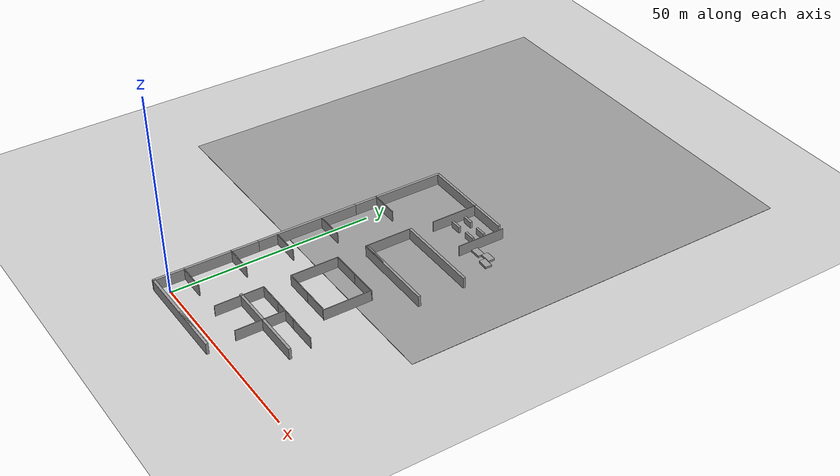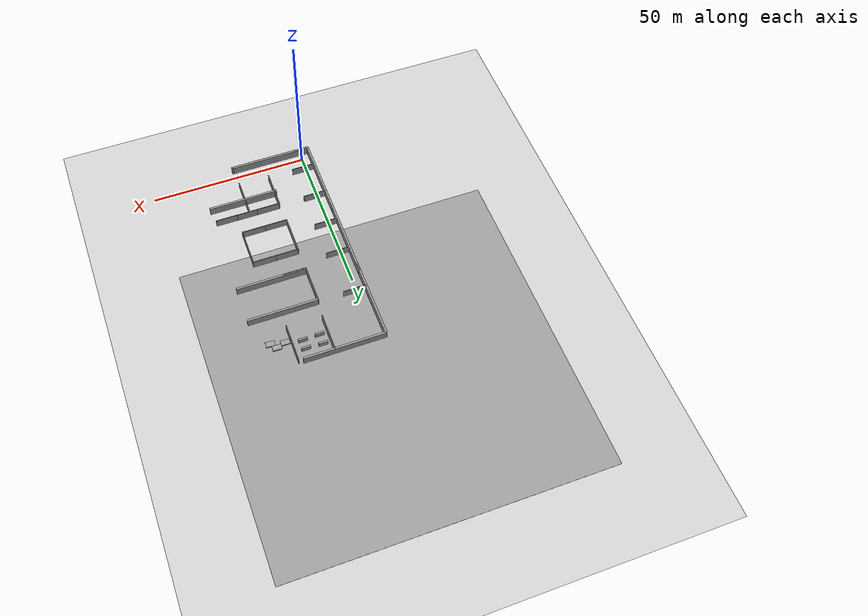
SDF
<sdf version="1.7">
 <world name="default">
  <model name="ground_plane">
   <static>1</static>
   <link name="link">
    <collision name="collision_collision">
     <geometry><plane><normal>0 0 1</normal><size>100 100</size></plane></geometry>
     <surface><friction><ode><mu>100</mu><mu2>50</mu2></ode></friction></surface>
    </collision>
    <visual name="visual">
     <cast_shadows>0</cast_shadows>
     <geometry><plane><normal>0 0 1</normal><size>100 100</size></plane></geometry>
     <material>
      <script><uri>file://media/materials/scripts/gazebo.material</uri><name>Gazebo/Grey</name></script>
     </material>
    </visual>
   </link>
  </model>
  <model name="grey_wall_long">
   <link name="link">
    <pose>0 0 1.37589 0 -0 0</pose>
    <inertial>
     <inertia><ixx>0</ixx><ixy>0</ixy><ixz>0</ixz><iyy>0</iyy><iyz>0</iyz><izz>0</izz></inertia>
     <mass>0</mass>
    </inertial>
    <visual name="visual">
     <cast_shadows>0</cast_shadows>
     <geometry><box><size>25.8815 0.642976 2.8</size></box></geometry>
     <material>
      <script>
       <uri>model://grey_wall/materials/scripts</uri>
       <uri>model://grey_wall/materials/textures</uri>
       <name>vrc/grey_wall</name>
      </script>
      <shader type="pixel"><normal_map>__default__</normal_map></shader>
      <ambient>1 1 1 1</ambient>
      <diffuse>1 1 1 1</diffuse>
      <specular>0 0 0 1</specular>
      <emissive>0 0 0 1</emissive>
     </material>
    </visual>
    <collision name="collision_collision">
     <geometry><box><size>25.8815 0.642976 2.8</size></box></geometry>
     <surface>
      <friction>
       <ode><mu>1</mu><mu2>1</mu2><fdir1>0 0 0</fdir1><slip1>0</slip1><slip2>0</slip2></ode>
       <torsional>
        <coefficient>1</coefficient>
        <patch_radius>0</patch_radius>
        <surface_radius>0</surface_radius>
        <use_patch_radius>1</use_patch_radius>
        <ode><slip>0</slip></ode>
       </torsional>
      </friction>
      <bounce><restitution_coefficient>0</restitution_coefficient><threshold>1e+06</threshold></bounce>
      <contact>
       <collide_without_contact>0</collide_without_contact>
       <collide_without_contact_bitmask>1</collide_without_contact_bitmask>
       <collide_bitmask>1</collide_bitmask>
       <ode>
        <soft_cfm>0</soft_cfm>
        <soft_erp>0.2</soft_erp>
        <kp>1e+13</kp>
        <kd>1</kd>
        <max_vel>0.01</max_vel>
        <min_depth>0</min_depth>
       </ode>
       <bullet>
        <split_impulse>1</split_impulse>
        <split_impulse_penetration_threshold>-0.01</split_impulse_penetration_threshold>
        <soft_cfm>0</soft_cfm>
        <soft_erp>0.2</soft_erp>
        <kp>1e+13</kp>
        <kd>1</kd>
       </bullet>
      </contact>
     </surface>
    </collision>
   </link>
   <static>1</static>
   <pose>10.3524 -2.38269 0 0 -0 0</pose>
  </model>
  <model name="ground_plane_0">
   <static>1</static>
   <link name="link">
    <collision name="collision_collision">
     <geometry><plane><normal>0 0 1</normal><size>100 100</size></plane></geometry>
     <surface><friction><ode><mu>100</mu><mu2>50</mu2></ode></friction></surface>
    </collision>
    <visual name="visual">
     <cast_shadows>0</cast_shadows>
     <geometry><plane><normal>0 0 1</normal><size>100 100</size></plane></geometry>
     <material>
      <script><uri>file://media/materials/scripts/gazebo.material</uri><name>Gazebo/Grey</name></script>
     </material>
    </visual>
   </link>
   <pose>-0.073857 81.0851 0 0 -0 0</pose>
  </model>
  <model name="grew_wall_long_vertial_0_clone">
   <model name="grey_wall_long">
    <link name="link">
     <pose>0 0 1.37589 0 -0 0</pose>
     <inertial>
      <inertia><ixx>0</ixx><ixy>0</ixy><ixz>0</ixz><iyy>0</iyy><iyz>0</iyz><izz>0</izz></inertia>
      <mass>0</mass>
     </inertial>
     <visual name="visual">
      <cast_shadows>0</cast_shadows>
      <geometry><box><size>25.8815 0.642976 2.8</size></box></geometry>
      <material>
       <script>
        <uri>model://grey_wall/materials/scripts</uri>
        <uri>model://grey_wall/materials/textures</uri>
        <name>vrc/grey_wall</name>
       </script>
       <shader type="pixel"><normal_map>__default__</normal_map></shader>
       <ambient>1 1 1 1</ambient>
       <diffuse>1 1 1 1</diffuse>
       <specular>0 0 0 1</specular>
       <emissive>0 0 0 1</emissive>
      </material>
     </visual>
     <collision name="collision_collision">
      <geometry><box><size>25.8815 0.642976 2.8</size></box></geometry>
      <surface>
       <friction>
        <ode><mu>1</mu><mu2>1</mu2><fdir1>0 0 0</fdir1><slip1>0</slip1><slip2>0</slip2></ode>
        <torsional>
         <coefficient>1</coefficient>
         <patch_radius>0</patch_radius>
         <surface_radius>0</surface_radius>
         <use_patch_radius>1</use_patch_radius>
         <ode><slip>0</slip></ode>
        </torsional>
       </friction>
       <bounce><restitution_coefficient>0</restitution_coefficient><threshold>1e+06</threshold></bounce>
       <contact>
        <collide_without_contact>0</collide_without_contact>
        <collide_without_contact_bitmask>1</collide_without_contact_bitmask>
        <collide_bitmask>1</collide_bitmask>
        <ode>
         <soft_cfm>0</soft_cfm>
         <soft_erp>0.2</soft_erp>
         <kp>1e+13</kp>
         <kd>1</kd>
         <max_vel>0.01</max_vel>
         <min_depth>0</min_depth>
        </ode>
        <bullet>
         <split_impulse>1</split_impulse>
         <split_impulse_penetration_threshold>-0.01</split_impulse_penetration_threshold>
         <soft_cfm>0</soft_cfm>
         <soft_erp>0.2</soft_erp>
         <kp>1e+13</kp>
         <kd>1</kd>
        </bullet>
       </contact>
      </surface>
     </collision>
    </link>
    <static>1</static>
    <pose>1e-06 -0 0 0 -0 1.57003</pose>
   </model>
   <static>0</static>
   <pose>-2.80084 59.1647 0 0 -0 0</pose>
  </model>
  <model name="grey_wall_long_term">
   <link name="link">
    <pose>-1.74587 -0.378849 1.37589 0 -0 0</pose>
    <inertial>
     <inertia><ixx>0</ixx><ixy>0</ixy><ixz>0</ixz><iyy>0</iyy><iyz>0</iyz><izz>0</izz></inertia>
     <mass>0</mass>
    </inertial>
    <visual name="visual">
     <cast_shadows>0</cast_shadows>
     <geometry><box><size>22.1596 0.642976 2.8</size></box></geometry>
     <material>
      <script>
       <uri>model://grey_wall/materials/scripts</uri>
       <uri>model://grey_wall/materials/textures</uri>
       <name>vrc/grey_wall</name>
      </script>
      <shader type="pixel"><normal_map>__default__</normal_map></shader>
      <ambient>1 1 1 1</ambient>
      <diffuse>1 1 1 1</diffuse>
      <specular>0 0 0 1</specular>
      <emissive>0 0 0 1</emissive>
     </material>
    </visual>
    <collision name="collision_collision">
     <geometry><box><size>22.1596 0.642976 2.8</size></box></geometry>
     <surface>
      <friction>
       <ode><mu>1</mu><mu2>1</mu2><fdir1>0 0 0</fdir1><slip1>0</slip1><slip2>0</slip2></ode>
       <torsional>
        <coefficient>1</coefficient>
        <patch_radius>0</patch_radius>
        <surface_radius>0</surface_radius>
        <use_patch_radius>1</use_patch_radius>
        <ode><slip>0</slip></ode>
       </torsional>
      </friction>
      <bounce><restitution_coefficient>0</restitution_coefficient><threshold>1e+06</threshold></bounce>
      <contact>
       <collide_without_contact>0</collide_without_contact>
       <collide_without_contact_bitmask>1</collide_without_contact_bitmask>
       <collide_bitmask>1</collide_bitmask>
       <ode>
        <soft_cfm>0</soft_cfm>
        <soft_erp>0.2</soft_erp>
        <kp>1e+13</kp>
        <kd>1</kd>
        <max_vel>0.01</max_vel>
        <min_depth>0</min_depth>
       </ode>
       <bullet>
        <split_impulse>1</split_impulse>
        <split_impulse_penetration_threshold>-0.01</split_impulse_penetration_threshold>
        <soft_cfm>0</soft_cfm>
        <soft_erp>0.2</soft_erp>
        <kp>1e+13</kp>
        <kd>1</kd>
       </bullet>
      </contact>
     </surface>
    </collision>
   </link>
   <static>1</static>
   <pose>25.4016 54.6879 0 0 -0 0</pose>
  </model>
  <model name="grey_wall_12m_vertial_2_clone_clone_0">
   <link name="link">
    <pose>0.289112 -0.003891 1.4 0 0 -1.5701</pose>
    <inertial>
     <inertia><ixx>0</ixx><ixy>0</ixy><ixz>0</ixz><iyy>0</iyy><iyz>0</iyz><izz>0</izz></inertia>
     <mass>0</mass>
    </inertial>
    <visual name="visual">
     <cast_shadows>0</cast_shadows>
     <geometry><box><size>12.0527 0.2 2.8</size></box></geometry>
     <material>
      <script>
       <uri>model://grey_wall/materials/scripts</uri>
       <uri>model://grey_wall/materials/textures</uri>
       <name>vrc/grey_wall</name>
      </script>
      <shader type="pixel"/>
      <ambient>1 1 1 1</ambient>
      <diffuse>1 1 1 1</diffuse>
      <specular>0 0 0 1</specular>
      <emissive>0 0 0 1</emissive>
     </material>
    </visual>
    <collision name="collision_collision">
     <geometry><box><size>12.0527 0.2 2.8</size></box></geometry>
     <surface>
      <friction>
       <ode><mu>1</mu><mu2>1</mu2><fdir1>0 0 0</fdir1><slip1>0</slip1><slip2>0</slip2></ode>
       <torsional>
        <coefficient>1</coefficient>
        <patch_radius>0</patch_radius>
        <surface_radius>0</surface_radius>
        <use_patch_radius>1</use_patch_radius>
        <ode><slip>0</slip></ode>
       </torsional>
      </friction>
      <bounce><restitution_coefficient>0</restitution_coefficient><threshold>1e+06</threshold></bounce>
      <contact>
       <collide_without_contact>0</collide_without_contact>
       <collide_without_contact_bitmask>1</collide_without_contact_bitmask>
       <collide_bitmask>1</collide_bitmask>
       <ode>
        <soft_cfm>0</soft_cfm>
        <soft_erp>0.2</soft_erp>
        <kp>1e+13</kp>
        <kd>1</kd>
        <max_vel>0.01</max_vel>
        <min_depth>0</min_depth>
       </ode>
       <bullet>
        <split_impulse>1</split_impulse>
        <split_impulse_penetration_threshold>-0.01</split_impulse_penetration_threshold>
        <soft_cfm>0</soft_cfm>
        <soft_erp>0.2</soft_erp>
        <kp>1e+13</kp>
        <kd>1</kd>
       </bullet>
      </contact>
     </surface>
    </collision>
   </link>
   <static>1</static>
   <pose>12.5451 10.5106 0 0 -0 0</pose>
  </model>
  <model name="grey_wall_12m_vertial_2_clone_clone_1">
   <link name="link">
    <pose>0.289112 -0.003891 1.4 0 0 -1.5701</pose>
    <inertial>
     <inertia><ixx>0</ixx><ixy>0</ixy><ixz>0</ixz><iyy>0</iyy><iyz>0</iyz><izz>0</izz></inertia>
     <mass>0</mass>
    </inertial>
    <visual name="visual">
     <cast_shadows>0</cast_shadows>
     <geometry><box><size>12.0527 0.2 2.8</size></box></geometry>
     <material>
      <script>
       <uri>model://grey_wall/materials/scripts</uri>
       <uri>model://grey_wall/materials/textures</uri>
       <name>vrc/grey_wall</name>
      </script>
      <shader type="pixel"/>
      <ambient>1 1 1 1</ambient>
      <diffuse>1 1 1 1</diffuse>
      <specular>0 0 0 1</specular>
      <emissive>0 0 0 1</emissive>
     </material>
    </visual>
    <collision name="collision_collision">
     <geometry><box><size>12.0527 0.2 2.8</size></box></geometry>
     <surface>
      <friction>
       <ode><mu>1</mu><mu2>1</mu2><fdir1>0 0 0</fdir1><slip1>0</slip1><slip2>0</slip2></ode>
       <torsional>
        <coefficient>1</coefficient>
        <patch_radius>0</patch_radius>
        <surface_radius>0</surface_radius>
        <use_patch_radius>1</use_patch_radius>
        <ode><slip>0</slip></ode>
       </torsional>
      </friction>
      <bounce><restitution_coefficient>0</restitution_coefficient><threshold>1e+06</threshold></bounce>
      <contact>
       <collide_without_contact>0</collide_without_contact>
       <collide_without_contact_bitmask>1</collide_without_contact_bitmask>
       <collide_bitmask>1</collide_bitmask>
       <ode>
        <soft_cfm>0</soft_cfm>
        <soft_erp>0.2</soft_erp>
        <kp>1e+13</kp>
        <kd>1</kd>
        <max_vel>0.01</max_vel>
        <min_depth>0</min_depth>
       </ode>
       <bullet>
        <split_impulse>1</split_impulse>
        <split_impulse_penetration_threshold>-0.01</split_impulse_penetration_threshold>
        <soft_cfm>0</soft_cfm>
        <soft_erp>0.2</soft_erp>
        <kp>1e+13</kp>
        <kd>1</kd>
       </bullet>
      </contact>
     </surface>
    </collision>
   </link>
   <static>1</static>
   <pose>12.22 48.5915 0 0 -0 0</pose>
  </model>
  <model name="grey_wall_12m_vertial_2_clone_clone_2">
   <link name="link">
    <pose>0.289112 -0.003891 1.4 0 0 -1.5701</pose>
    <inertial>
     <inertia><ixx>0</ixx><ixy>0</ixy><ixz>0</ixz><iyy>0</iyy><iyz>0</iyz><izz>0</izz></inertia>
     <mass>0</mass>
    </inertial>
    <visual name="visual">
     <cast_shadows>0</cast_shadows>
     <geometry><box><size>12.0527 0.2 2.8</size></box></geometry>
     <material>
      <script>
       <uri>model://grey_wall/materials/scripts</uri>
       <uri>model://grey_wall/materials/textures</uri>
       <name>vrc/grey_wall</name>
      </script>
      <shader type="pixel"/>
      <ambient>1 1 1 1</ambient>
      <diffuse>1 1 1 1</diffuse>
      <specular>0 0 0 1</specular>
      <emissive>0 0 0 1</emissive>
     </material>
    </visual>
    <collision name="collision_collision">
     <geometry><box><size>12.0527 0.2 2.8</size></box></geometry>
     <surface>
      <friction>
       <ode><mu>1</mu><mu2>1</mu2><fdir1>0 0 0</fdir1><slip1>0</slip1><slip2>0</slip2></ode>
       <torsional>
        <coefficient>1</coefficient>
        <patch_radius>0</patch_radius>
        <surface_radius>0</surface_radius>
        <use_patch_radius>1</use_patch_radius>
        <ode><slip>0</slip></ode>
       </torsional>
      </friction>
      <bounce><restitution_coefficient>0</restitution_coefficient><threshold>1e+06</threshold></bounce>
      <contact>
       <collide_without_contact>0</collide_without_contact>
       <collide_without_contact_bitmask>1</collide_without_contact_bitmask>
       <collide_bitmask>1</collide_bitmask>
       <ode>
        <soft_cfm>0</soft_cfm>
        <soft_erp>0.2</soft_erp>
        <kp>1e+13</kp>
        <kd>1</kd>
        <max_vel>0.01</max_vel>
        <min_depth>0</min_depth>
       </ode>
       <bullet>
        <split_impulse>1</split_impulse>
        <split_impulse_penetration_threshold>-0.01</split_impulse_penetration_threshold>
        <soft_cfm>0</soft_cfm>
        <soft_erp>0.2</soft_erp>
        <kp>1e+13</kp>
        <kd>1</kd>
       </bullet>
      </contact>
     </surface>
    </collision>
   </link>
   <static>1</static>
   <pose>12.3021 29.2356 0 0 -0 0</pose>
  </model>
  <model name="grey_wall_0_clone_clone_clone">
   <static>1</static>
   <link name="link">
    <pose>0 0 1.4 0 -0 0</pose>
    <collision name="collision_collision"><geometry><box><size>7.5 0.2 2.8</size></box></geometry></collision>
    <visual name="visual">
     <cast_shadows>0</cast_shadows>
     <geometry><box><size>7.5 0.2 2.8</size></box></geometry>
     <material>
      <script>
       <uri>model://grey_wall/materials/scripts</uri>
       <uri>model://grey_wall/materials/textures</uri>
       <name>vrc/grey_wall</name>
      </script>
     </material>
    </visual>
   </link>
   <pose>0.965248 4.85897 0 0 -0 0</pose>
  </model>
  <model name="grey_wall_0_clone_clone_clone_3">
   <static>1</static>
   <link name="link">
    <pose>0 0 1.4 0 -0 0</pose>
    <collision name="collision_collision"><geometry><box><size>7.5 0.2 2.8</size></box></geometry></collision>
    <visual name="visual">
     <cast_shadows>0</cast_shadows>
     <geometry><box><size>7.5 0.2 2.8</size></box></geometry>
     <material>
      <script>
       <uri>model://grey_wall/materials/scripts</uri>
       <uri>model://grey_wall/materials/textures</uri>
       <name>vrc/grey_wall</name>
      </script>
     </material>
    </visual>
   </link>
   <pose>16.1538 42.549 0 0 -0 0</pose>
  </model>
  <model name="grey_wall_0_clone_clone_clone_4">
   <static>1</static>
   <link name="link">
    <pose>0 0 1.4 0 -0 0</pose>
    <collision name="collision_collision"><geometry><box><size>7.5 0.2 2.8</size></box></geometry></collision>
    <visual name="visual">
     <cast_shadows>0</cast_shadows>
     <geometry><box><size>7.5 0.2 2.8</size></box></geometry>
     <material>
      <script>
       <uri>model://grey_wall/materials/scripts</uri>
       <uri>model://grey_wall/materials/textures</uri>
       <name>vrc/grey_wall</name>
      </script>
     </material>
    </visual>
   </link>
   <pose>16.2541 35.1402 0 0 -0 0</pose>
  </model>
  <model name="grey_wall_0_clone_clone_clone_4_clone">
   <static>1</static>
   <link name="link">
    <pose>0 0 1.4 0 -0 0</pose>
    <collision name="collision_collision"><geometry><box><size>7.5 0.2 2.8</size></box></geometry></collision>
    <visual name="visual">
     <cast_shadows>0</cast_shadows>
     <geometry><box><size>7.5 0.2 2.8</size></box></geometry>
     <material>
      <script>
       <uri>model://grey_wall/materials/scripts</uri>
       <uri>model://grey_wall/materials/textures</uri>
       <name>vrc/grey_wall</name>
      </script>
     </material>
    </visual>
   </link>
   <pose>16.5015 16.4177 0 0 -0 0</pose>
  </model>
  <model name="grey_wall_0_clone_clone_clone_4_clone_0">
   <static>1</static>
   <link name="link">
    <pose>0 0 1.4 0 -0 0</pose>
    <collision name="collision_collision"><geometry><box><size>7.5 0.2 2.8</size></box></geometry></collision>
    <visual name="visual">
     <cast_shadows>0</cast_shadows>
     <geometry><box><size>7.5 0.2 2.8</size></box></geometry>
     <material>
      <script>
       <uri>model://grey_wall/materials/scripts</uri>
       <uri>model://grey_wall/materials/textures</uri>
       <name>vrc/grey_wall</name>
      </script>
     </material>
    </visual>
   </link>
   <pose>16.2401 23.3036 0 0 -0 0</pose>
  </model>
  <model name="grey_wall_0_clone_clone_clone_2_clone_0_clone_1_clone_0_clone">
   <static>1</static>
   <link name="link">
    <pose>0 0 1.4 0 -0 0</pose>
    <collision name="collision_collision"><geometry><box><size>7.5 0.2 2.8</size></box></geometry></collision>
    <visual name="visual">
     <cast_shadows>0</cast_shadows>
     <geometry><box><size>7.5 0.2 2.8</size></box></geometry>
     <material>
      <script>
       <uri>model://grey_wall/materials/scripts</uri>
       <uri>model://grey_wall/materials/textures</uri>
       <name>vrc/grey_wall</name>
      </script>
     </material>
    </visual>
   </link>
   <pose>0.752865 54.4466 0 0 -0 0</pose>
  </model>
  <model name="unit_box_clone_clone_0">
   <pose>15.6743 64.8519 0.834396 -0 -3.2e-05 0.012884</pose>
   <link name="link">
    <inertial>
     <mass>1</mass>
     <inertia>
      <ixx>0.166667</ixx>
      <ixy>0</ixy>
      <ixz>0</ixz>
      <iyy>0.166667</iyy>
      <iyz>0</iyz>
      <izz>0.166667</izz>
     </inertia>
    </inertial>
    <collision name="collision_collision">
     <geometry><box><size>2.81196 0.562598 1.66888</size></box></geometry>
    </collision>
    <visual name="visual">
     <geometry><box><size>2.81196 0.562598 1.66888</size></box></geometry>
     <material>
      <script><name>Gazebo/Grey</name><uri>file://media/materials/scripts/gazebo.material</uri></script>
     </material>
    </visual>
   </link>
  </model>
  <model name="unit_box_clone_clone_1">
   <pose>15.5719 68.1637 0.834396 -0 3.2e-05 -0.012728</pose>
   <link name="link">
    <inertial>
     <mass>1</mass>
     <inertia>
      <ixx>0.166667</ixx>
      <ixy>0</ixy>
      <ixz>0</ixz>
      <iyy>0.166667</iyy>
      <iyz>0</iyz>
      <izz>0.166667</izz>
     </inertia>
    </inertial>
    <collision name="collision_collision">
     <geometry><box><size>2.81196 0.562598 1.66888</size></box></geometry>
    </collision>
    <visual name="visual">
     <geometry><box><size>2.81196 0.562598 1.66888</size></box></geometry>
     <material>
      <script><name>Gazebo/Grey</name><uri>file://media/materials/scripts/gazebo.material</uri></script>
     </material>
    </visual>
   </link>
  </model>
  <model name="unit_box_clone_clone_2">
   <pose>20.8998 65.016 0.834396 0 3.2e-05 0.013</pose>
   <link name="link">
    <inertial>
     <mass>1</mass>
     <inertia>
      <ixx>0.166667</ixx>
      <ixy>0</ixy>
      <ixz>0</ixz>
      <iyy>0.166667</iyy>
      <iyz>0</iyz>
      <izz>0.166667</izz>
     </inertia>
    </inertial>
    <collision name="collision_collision">
     <geometry><box><size>2.81196 0.562598 1.66888</size></box></geometry>
    </collision>
    <visual name="visual">
     <geometry><box><size>2.81196 0.562598 1.66888</size></box></geometry>
     <material>
      <script><name>Gazebo/Grey</name><uri>file://media/materials/scripts/gazebo.material</uri></script>
     </material>
    </visual>
   </link>
  </model>
  <model name="unit_box_clone_clone_3">
   <pose>20.8594 67.9808 0.834396 0 3.2e-05 0.012869</pose>
   <link name="link">
    <inertial>
     <mass>1</mass>
     <inertia>
      <ixx>0.166667</ixx>
      <ixy>0</ixy>
      <ixz>0</ixz>
      <iyy>0.166667</iyy>
      <iyz>0</iyz>
      <izz>0.166667</izz>
     </inertia>
    </inertial>
    <collision name="collision_collision">
     <geometry><box><size>2.81196 0.562598 1.66888</size></box></geometry>
    </collision>
    <visual name="visual">
     <geometry><box><size>2.81196 0.562598 1.66888</size></box></geometry>
     <material>
      <script><name>Gazebo/Grey</name><uri>file://media/materials/scripts/gazebo.material</uri></script>
     </material>
    </visual>
   </link>
  </model>
  <model name="unit_box_clone_clone_5">
   <pose>30.3622 62.906 0.281287 1.57078 -0 -0.053418</pose>
   <link name="link">
    <inertial>
     <mass>1</mass>
     <inertia>
      <ixx>0.166667</ixx>
      <ixy>0</ixy>
      <ixz>0</ixz>
      <iyy>0.166667</iyy>
      <iyz>0</iyz>
      <izz>0.166667</izz>
     </inertia>
    </inertial>
    <collision name="collision_collision">
     <geometry><box><size>2.81196 0.562598 1.66888</size></box></geometry>
    </collision>
    <visual name="visual">
     <geometry><box><size>2.81196 0.562598 1.66888</size></box></geometry>
     <material>
      <script><name>Gazebo/Grey</name><uri>file://media/materials/scripts/gazebo.material</uri></script>
     </material>
    </visual>
   </link>
  </model>
  <model name="unit_box_clone_clone_6">
   <pose>28.819 64.6945 0.281103 -1.5708 -0.00014 0.000555</pose>
   <link name="link">
    <inertial>
     <mass>1</mass>
     <inertia>
      <ixx>0.166667</ixx>
      <ixy>0</ixy>
      <ixz>0</ixz>
      <iyy>0.166667</iyy>
      <iyz>0</iyz>
      <izz>0.166667</izz>
     </inertia>
    </inertial>
    <collision name="collision_collision">
     <geometry><box><size>2.81196 0.562598 1.66888</size></box></geometry>
    </collision>
    <visual name="visual">
     <geometry><box><size>2.81196 0.562598 1.66888</size></box></geometry>
     <material>
      <script><name>Gazebo/Grey</name><uri>file://media/materials/scripts/gazebo.material</uri></script>
     </material>
    </visual>
   </link>
  </model>
  <model name="grey_wall_long_2_clone_1">
   <link name="link">
    <pose>0 0 1.37589 0 -0 0</pose>
    <inertial>
     <inertia><ixx>0</ixx><ixy>0</ixy><ixz>0</ixz><iyy>0</iyy><iyz>0</iyz><izz>0</izz></inertia>
     <mass>0</mass>
    </inertial>
    <visual name="visual">
     <cast_shadows>0</cast_shadows>
     <geometry><box><size>25.8815 0.642976 2.8</size></box></geometry>
     <material>
      <script>
       <uri>model://grey_wall/materials/scripts</uri>
       <uri>model://grey_wall/materials/textures</uri>
       <name>vrc/grey_wall</name>
      </script>
      <shader type="pixel"><normal_map>__default__</normal_map></shader>
      <ambient>1 1 1 1</ambient>
      <diffuse>1 1 1 1</diffuse>
      <specular>0 0 0 1</specular>
      <emissive>0 0 0 1</emissive>
     </material>
    </visual>
    <collision name="collision_collision">
     <geometry><box><size>25.8815 0.642976 2.8</size></box></geometry>
     <surface>
      <friction>
       <ode><mu>1</mu><mu2>1</mu2><fdir1>0 0 0</fdir1><slip1>0</slip1><slip2>0</slip2></ode>
       <torsional>
        <coefficient>1</coefficient>
        <patch_radius>0</patch_radius>
        <surface_radius>0</surface_radius>
        <use_patch_radius>1</use_patch_radius>
        <ode><slip>0</slip></ode>
       </torsional>
      </friction>
      <bounce><restitution_coefficient>0</restitution_coefficient><threshold>1e+06</threshold></bounce>
      <contact>
       <collide_without_contact>0</collide_without_contact>
       <collide_without_contact_bitmask>1</collide_without_contact_bitmask>
       <collide_bitmask>1</collide_bitmask>
       <ode>
        <soft_cfm>0</soft_cfm>
        <soft_erp>0.2</soft_erp>
        <kp>1e+13</kp>
        <kd>1</kd>
        <max_vel>0.01</max_vel>
        <min_depth>0</min_depth>
       </ode>
       <bullet>
        <split_impulse>1</split_impulse>
        <split_impulse_penetration_threshold>-0.01</split_impulse_penetration_threshold>
        <soft_cfm>0</soft_cfm>
        <soft_erp>0.2</soft_erp>
        <kp>1e+13</kp>
        <kd>1</kd>
       </bullet>
      </contact>
     </surface>
    </collision>
   </link>
   <static>1</static>
   <pose>9.99482 71.8312 0 0 -0 0</pose>
  </model>
  <model name="grew_wall_long_vertial_clone">
   <model name="grey_wall_long">
    <link name="link">
     <pose>0 0 1.37589 0 -0 0</pose>
     <inertial>
      <inertia><ixx>0</ixx><ixy>0</ixy><ixz>0</ixz><iyy>0</iyy><iyz>0</iyz><izz>0</izz></inertia>
      <mass>0</mass>
     </inertial>
     <visual name="visual">
      <cast_shadows>0</cast_shadows>
      <geometry><box><size>25.8815 0.642976 2.8</size></box></geometry>
      <material>
       <script>
        <uri>model://grey_wall/materials/scripts</uri>
        <uri>model://grey_wall/materials/textures</uri>
        <name>vrc/grey_wall</name>
       </script>
       <shader type="pixel"><normal_map>__default__</normal_map></shader>
       <ambient>1 1 1 1</ambient>
       <diffuse>1 1 1 1</diffuse>
       <specular>0 0 0 1</specular>
       <emissive>0 0 0 1</emissive>
      </material>
     </visual>
     <collision name="collision_collision">
      <geometry><box><size>25.8815 0.642976 2.8</size></box></geometry>
      <surface>
       <friction>
        <ode><mu>1</mu><mu2>1</mu2><fdir1>0 0 0</fdir1><slip1>0</slip1><slip2>0</slip2></ode>
        <torsional>
         <coefficient>1</coefficient>
         <patch_radius>0</patch_radius>
         <surface_radius>0</surface_radius>
         <use_patch_radius>1</use_patch_radius>
         <ode><slip>0</slip></ode>
        </torsional>
       </friction>
       <bounce><restitution_coefficient>0</restitution_coefficient><threshold>1e+06</threshold></bounce>
       <contact>
        <collide_without_contact>0</collide_without_contact>
        <collide_without_contact_bitmask>1</collide_without_contact_bitmask>
        <collide_bitmask>1</collide_bitmask>
        <ode>
         <soft_cfm>0</soft_cfm>
         <soft_erp>0.2</soft_erp>
         <kp>1e+13</kp>
         <kd>1</kd>
         <max_vel>0.01</max_vel>
         <min_depth>0</min_depth>
        </ode>
        <bullet>
         <split_impulse>1</split_impulse>
         <split_impulse_penetration_threshold>-0.01</split_impulse_penetration_threshold>
         <soft_cfm>0</soft_cfm>
         <soft_erp>0.2</soft_erp>
         <kp>1e+13</kp>
         <kd>1</kd>
        </bullet>
       </contact>
      </surface>
     </collision>
    </link>
    <static>1</static>
    <pose>1e-06 -0 0 0 -0 1.57003</pose>
   </model>
   <static>0</static>
   <pose>-2.80196 35.7564 0 0 -0 0</pose>
  </model>
  <model name="grew_wall_long_vertial_clone_0">
   <model name="grey_wall_long">
    <link name="link">
     <pose>0 0 1.37589 0 -0 0</pose>
     <inertial>
      <inertia><ixx>0</ixx><ixy>0</ixy><ixz>0</ixz><iyy>0</iyy><iyz>0</iyz><izz>0</izz></inertia>
      <mass>0</mass>
     </inertial>
     <visual name="visual">
      <cast_shadows>0</cast_shadows>
      <geometry><box><size>25.8815 0.642976 2.8</size></box></geometry>
      <material>
       <script>
        <uri>model://grey_wall/materials/scripts</uri>
        <uri>model://grey_wall/materials/textures</uri>
        <name>vrc/grey_wall</name>
       </script>
       <shader type="pixel"><normal_map>__default__</normal_map></shader>
       <ambient>1 1 1 1</ambient>
       <diffuse>1 1 1 1</diffuse>
       <specular>0 0 0 1</specular>
       <emissive>0 0 0 1</emissive>
      </material>
     </visual>
     <collision name="collision_collision">
      <geometry><box><size>25.8815 0.642976 2.8</size></box></geometry>
      <surface>
       <friction>
        <ode><mu>1</mu><mu2>1</mu2><fdir1>0 0 0</fdir1><slip1>0</slip1><slip2>0</slip2></ode>
        <torsional>
         <coefficient>1</coefficient>
         <patch_radius>0</patch_radius>
         <surface_radius>0</surface_radius>
         <use_patch_radius>1</use_patch_radius>
         <ode><slip>0</slip></ode>
        </torsional>
       </friction>
       <bounce><restitution_coefficient>0</restitution_coefficient><threshold>1e+06</threshold></bounce>
       <contact>
        <collide_without_contact>0</collide_without_contact>
        <collide_without_contact_bitmask>1</collide_without_contact_bitmask>
        <collide_bitmask>1</collide_bitmask>
        <ode>
         <soft_cfm>0</soft_cfm>
         <soft_erp>0.2</soft_erp>
         <kp>1e+13</kp>
         <kd>1</kd>
         <max_vel>0.01</max_vel>
         <min_depth>0</min_depth>
        </ode>
        <bullet>
         <split_impulse>1</split_impulse>
         <split_impulse_penetration_threshold>-0.01</split_impulse_penetration_threshold>
         <soft_cfm>0</soft_cfm>
         <soft_erp>0.2</soft_erp>
         <kp>1e+13</kp>
         <kd>1</kd>
        </bullet>
       </contact>
      </surface>
     </collision>
    </link>
    <static>1</static>
    <pose>1e-06 -0 0 0 -0 1.57003</pose>
   </model>
   <static>0</static>
   <pose>-2.80688 10.3096 0 0 -0 0</pose>
  </model>
  <model name="grey_wall_long_clone">
   <link name="link">
    <pose>0 0 1.37589 0 -0 0</pose>
    <inertial>
     <inertia><ixx>0</ixx><ixy>0</ixy><ixz>0</ixz><iyy>0</iyy><iyz>0</iyz><izz>0</izz></inertia>
     <mass>0</mass>
    </inertial>
    <visual name="visual">
     <cast_shadows>0</cast_shadows>
     <geometry><box><size>25.8815 0.642976 2.8</size></box></geometry>
     <material>
      <script>
       <uri>model://grey_wall/materials/scripts</uri>
       <uri>model://grey_wall/materials/textures</uri>
       <name>vrc/grey_wall</name>
      </script>
      <shader type="pixel"><normal_map>__default__</normal_map></shader>
      <ambient>1 1 1 1</ambient>
      <diffuse>1 1 1 1</diffuse>
      <specular>0 0 0 1</specular>
      <emissive>0 0 0 1</emissive>
     </material>
    </visual>
    <collision name="collision_collision">
     <geometry><box><size>25.8815 0.642976 2.8</size></box></geometry>
     <surface>
      <friction>
       <ode><mu>1</mu><mu2>1</mu2><fdir1>0 0 0</fdir1><slip1>0</slip1><slip2>0</slip2></ode>
       <torsional>
        <coefficient>1</coefficient>
        <patch_radius>0</patch_radius>
        <surface_radius>0</surface_radius>
        <use_patch_radius>1</use_patch_radius>
        <ode><slip>0</slip></ode>
       </torsional>
      </friction>
      <bounce><restitution_coefficient>0</restitution_coefficient><threshold>1e+06</threshold></bounce>
      <contact>
       <collide_without_contact>0</collide_without_contact>
       <collide_without_contact_bitmask>1</collide_without_contact_bitmask>
       <collide_bitmask>1</collide_bitmask>
       <ode>
        <soft_cfm>0</soft_cfm>
        <soft_erp>0.2</soft_erp>
        <kp>1e+13</kp>
        <kd>1</kd>
        <max_vel>0.01</max_vel>
        <min_depth>0</min_depth>
       </ode>
       <bullet>
        <split_impulse>1</split_impulse>
        <split_impulse_penetration_threshold>-0.01</split_impulse_penetration_threshold>
        <soft_cfm>0</soft_cfm>
        <soft_erp>0.2</soft_erp>
        <kp>1e+13</kp>
        <kd>1</kd>
       </bullet>
      </contact>
     </surface>
    </collision>
   </link>
   <static>1</static>
   <pose>9.80066 -2.33568 0 0 -0 0</pose>
  </model>
  <model name="grey_wall_0_clone_clone_clone_5_clone_0_clone">
   <static>1</static>
   <link name="link">
    <pose>0 0 1.4 0 -0 0</pose>
    <collision name="collision_collision"><geometry><box><size>7.5 0.2 2.8</size></box></geometry></collision>
    <visual name="visual">
     <cast_shadows>0</cast_shadows>
     <geometry><box><size>7.5 0.2 2.8</size></box></geometry>
     <material>
      <script>
       <uri>model://grey_wall/materials/scripts</uri>
       <uri>model://grey_wall/materials/textures</uri>
       <name>vrc/grey_wall</name>
      </script>
     </material>
    </visual>
   </link>
   <pose>23.1697 16.402 0 0 -0 0</pose>
  </model>
  <model name="grey_wall_0_clone_clone_clone_5_clone_0_clone_0">
   <static>1</static>
   <link name="link">
    <pose>0 0 1.4 0 -0 0</pose>
    <collision name="collision_collision"><geometry><box><size>7.5 0.2 2.8</size></box></geometry></collision>
    <visual name="visual">
     <cast_shadows>0</cast_shadows>
     <geometry><box><size>7.5 0.2 2.8</size></box></geometry>
     <material>
      <script>
       <uri>model://grey_wall/materials/scripts</uri>
       <uri>model://grey_wall/materials/textures</uri>
       <name>vrc/grey_wall</name>
      </script>
     </material>
    </visual>
   </link>
   <pose>29.9975 16.3553 0 0 -0 0</pose>
  </model>
  <model name="grey_wall_0_clone_clone_clone_4_clone_0_clone">
   <static>1</static>
   <link name="link">
    <pose>0 0 1.4 0 -0 0</pose>
    <collision name="collision_collision"><geometry><box><size>7.5 0.2 2.8</size></box></geometry></collision>
    <visual name="visual">
     <cast_shadows>0</cast_shadows>
     <geometry><box><size>7.5 0.2 2.8</size></box></geometry>
     <material>
      <script>
       <uri>model://grey_wall/materials/scripts</uri>
       <uri>model://grey_wall/materials/textures</uri>
       <name>vrc/grey_wall</name>
      </script>
     </material>
    </visual>
   </link>
   <pose>23.4352 23.3116 0 0 -0 0</pose>
  </model>
  <model name="grey_wall_0_clone_clone_clone_4_clone_0_clone_0">
   <static>1</static>
   <link name="link">
    <pose>0 0 1.4 0 -0 0</pose>
    <collision name="collision_collision"><geometry><box><size>7.5 0.2 2.8</size></box></geometry></collision>
    <visual name="visual">
     <cast_shadows>0</cast_shadows>
     <geometry><box><size>7.5 0.2 2.8</size></box></geometry>
     <material>
      <script>
       <uri>model://grey_wall/materials/scripts</uri>
       <uri>model://grey_wall/materials/textures</uri>
       <name>vrc/grey_wall</name>
      </script>
     </material>
    </visual>
   </link>
   <pose>23.4839 35.1504 0 0 -0 0</pose>
  </model>
  <model name="grey_wall_12m_vertial_2_clone_clone_2_clone">
   <link name="link">
    <pose>0.289112 -0.003891 1.4 0 0 -1.5701</pose>
    <inertial>
     <inertia><ixx>0</ixx><ixy>0</ixy><ixz>0</ixz><iyy>0</iyy><iyz>0</iyz><izz>0</izz></inertia>
     <mass>0</mass>
    </inertial>
    <visual name="visual">
     <cast_shadows>0</cast_shadows>
     <geometry><box><size>12.0527 0.2 2.8</size></box></geometry>
     <material>
      <script>
       <uri>model://grey_wall/materials/scripts</uri>
       <uri>model://grey_wall/materials/textures</uri>
       <name>vrc/grey_wall</name>
      </script>
      <shader type="pixel"/>
      <ambient>1 1 1 1</ambient>
      <diffuse>1 1 1 1</diffuse>
      <specular>0 0 0 1</specular>
      <emissive>0 0 0 1</emissive>
     </material>
    </visual>
    <collision name="collision_collision">
     <geometry><box><size>12.0527 0.2 2.8</size></box></geometry>
     <surface>
      <friction>
       <ode><mu>1</mu><mu2>1</mu2><fdir1>0 0 0</fdir1><slip1>0</slip1><slip2>0</slip2></ode>
       <torsional>
        <coefficient>1</coefficient>
        <patch_radius>0</patch_radius>
        <surface_radius>0</surface_radius>
        <use_patch_radius>1</use_patch_radius>
        <ode><slip>0</slip></ode>
       </torsional>
      </friction>
      <bounce><restitution_coefficient>0</restitution_coefficient><threshold>1e+06</threshold></bounce>
      <contact>
       <collide_without_contact>0</collide_without_contact>
       <collide_without_contact_bitmask>1</collide_without_contact_bitmask>
       <collide_bitmask>1</collide_bitmask>
       <ode>
        <soft_cfm>0</soft_cfm>
        <soft_erp>0.2</soft_erp>
        <kp>1e+13</kp>
        <kd>1</kd>
        <max_vel>0.01</max_vel>
        <min_depth>0</min_depth>
       </ode>
       <bullet>
        <split_impulse>1</split_impulse>
        <split_impulse_penetration_threshold>-0.01</split_impulse_penetration_threshold>
        <soft_cfm>0</soft_cfm>
        <soft_erp>0.2</soft_erp>
        <kp>1e+13</kp>
        <kd>1</kd>
       </bullet>
      </contact>
     </surface>
    </collision>
   </link>
   <static>1</static>
   <pose>26.8066 29.0855 0 0 -0 0</pose>
  </model>
  <model name="grey_wall_long_term_clone_2">
   <link name="link">
    <pose>-1.74587 -0.378849 1.37589 0 -0 0</pose>
    <inertial>
     <inertia><ixx>0</ixx><ixy>0</ixy><ixz>0</ixz><iyy>0</iyy><iyz>0</iyz><izz>0</izz></inertia>
     <mass>0</mass>
    </inertial>
    <visual name="visual">
     <cast_shadows>0</cast_shadows>
     <geometry><box><size>22.1596 0.642976 2.8</size></box></geometry>
     <material>
      <script>
       <uri>model://grey_wall/materials/scripts</uri>
       <uri>model://grey_wall/materials/textures</uri>
       <name>vrc/grey_wall</name>
      </script>
      <shader type="pixel"><normal_map>__default__</normal_map></shader>
      <ambient>1 1 1 1</ambient>
      <diffuse>1 1 1 1</diffuse>
      <specular>0 0 0 1</specular>
      <emissive>0 0 0 1</emissive>
     </material>
    </visual>
    <collision name="collision_collision">
     <geometry><box><size>22.1596 0.642976 2.8</size></box></geometry>
     <surface>
      <friction>
       <ode><mu>1</mu><mu2>1</mu2><fdir1>0 0 0</fdir1><slip1>0</slip1><slip2>0</slip2></ode>
       <torsional>
        <coefficient>1</coefficient>
        <patch_radius>0</patch_radius>
        <surface_radius>0</surface_radius>
        <use_patch_radius>1</use_patch_radius>
        <ode><slip>0</slip></ode>
       </torsional>
      </friction>
      <bounce><restitution_coefficient>0</restitution_coefficient><threshold>1e+06</threshold></bounce>
      <contact>
       <collide_without_contact>0</collide_without_contact>
       <collide_without_contact_bitmask>1</collide_without_contact_bitmask>
       <collide_bitmask>1</collide_bitmask>
       <ode>
        <soft_cfm>0</soft_cfm>
        <soft_erp>0.2</soft_erp>
        <kp>1e+13</kp>
        <kd>1</kd>
        <max_vel>0.01</max_vel>
        <min_depth>0</min_depth>
       </ode>
       <bullet>
        <split_impulse>1</split_impulse>
        <split_impulse_penetration_threshold>-0.01</split_impulse_penetration_threshold>
        <soft_cfm>0</soft_cfm>
        <soft_erp>0.2</soft_erp>
        <kp>1e+13</kp>
        <kd>1</kd>
       </bullet>
      </contact>
     </surface>
    </collision>
   </link>
   <static>1</static>
   <pose>25.3567 43.0549 0 0 -0 0</pose>
  </model>
  <model name="grey_wall_long_term_clone_clone">
   <link name="link">
    <pose>-1.74587 -0.378849 1.37589 0 -0 0</pose>
    <inertial>
     <inertia><ixx>0</ixx><ixy>0</ixy><ixz>0</ixz><iyy>0</iyy><iyz>0</iyz><izz>0</izz></inertia>
     <mass>0</mass>
    </inertial>
    <visual name="visual">
     <cast_shadows>0</cast_shadows>
     <geometry><box><size>22.1596 0.642976 2.8</size></box></geometry>
     <material>
      <script>
       <uri>model://grey_wall/materials/scripts</uri>
       <uri>model://grey_wall/materials/textures</uri>
       <name>vrc/grey_wall</name>
      </script>
      <shader type="pixel"><normal_map>__default__</normal_map></shader>
      <ambient>1 1 1 1</ambient>
      <diffuse>1 1 1 1</diffuse>
      <specular>0 0 0 1</specular>
      <emissive>0 0 0 1</emissive>
     </material>
    </visual>
    <collision name="collision_collision">
     <geometry><box><size>22.1596 0.642976 2.8</size></box></geometry>
     <surface>
      <friction>
       <ode><mu>1</mu><mu2>1</mu2><fdir1>0 0 0</fdir1><slip1>0</slip1><slip2>0</slip2></ode>
       <torsional>
        <coefficient>1</coefficient>
        <patch_radius>0</patch_radius>
        <surface_radius>0</surface_radius>
        <use_patch_radius>1</use_patch_radius>
        <ode><slip>0</slip></ode>
       </torsional>
      </friction>
      <bounce><restitution_coefficient>0</restitution_coefficient><threshold>1e+06</threshold></bounce>
      <contact>
       <collide_without_contact>0</collide_without_contact>
       <collide_without_contact_bitmask>1</collide_without_contact_bitmask>
       <collide_bitmask>1</collide_bitmask>
       <ode>
        <soft_cfm>0</soft_cfm>
        <soft_erp>0.2</soft_erp>
        <kp>1e+13</kp>
        <kd>1</kd>
        <max_vel>0.01</max_vel>
        <min_depth>0</min_depth>
       </ode>
       <bullet>
        <split_impulse>1</split_impulse>
        <split_impulse_penetration_threshold>-0.01</split_impulse_penetration_threshold>
        <soft_cfm>0</soft_cfm>
        <soft_erp>0.2</soft_erp>
        <kp>1e+13</kp>
        <kd>1</kd>
       </bullet>
      </contact>
     </surface>
    </collision>
   </link>
   <static>1</static>
   <pose>25.0267 11.4903 0 0 -0 0</pose>
  </model>
  <model name="grey_wall_12m_vertial_2_clone_clone_0_clone">
   <link name="link">
    <pose>0.289112 -0.003891 1.4 0 0 -1.5701</pose>
    <inertial>
     <inertia><ixx>0</ixx><ixy>0</ixy><ixz>0</ixz><iyy>0</iyy><iyz>0</iyz><izz>0</izz></inertia>
     <mass>0</mass>
    </inertial>
    <visual name="visual">
     <cast_shadows>0</cast_shadows>
     <geometry><box><size>12.0527 0.2 2.8</size></box></geometry>
     <material>
      <script>
       <uri>model://grey_wall/materials/scripts</uri>
       <uri>model://grey_wall/materials/textures</uri>
       <name>vrc/grey_wall</name>
      </script>
      <shader type="pixel"/>
      <ambient>1 1 1 1</ambient>
      <diffuse>1 1 1 1</diffuse>
      <specular>0 0 0 1</specular>
      <emissive>0 0 0 1</emissive>
     </material>
    </visual>
    <collision name="collision_collision">
     <geometry><box><size>12.0527 0.2 2.8</size></box></geometry>
     <surface>
      <friction>
       <ode><mu>1</mu><mu2>1</mu2><fdir1>0 0 0</fdir1><slip1>0</slip1><slip2>0</slip2></ode>
       <torsional>
        <coefficient>1</coefficient>
        <patch_radius>0</patch_radius>
        <surface_radius>0</surface_radius>
        <use_patch_radius>1</use_patch_radius>
        <ode><slip>0</slip></ode>
       </torsional>
      </friction>
      <bounce><restitution_coefficient>0</restitution_coefficient><threshold>1e+06</threshold></bounce>
      <contact>
       <collide_without_contact>0</collide_without_contact>
       <collide_without_contact_bitmask>1</collide_without_contact_bitmask>
       <collide_bitmask>1</collide_bitmask>
       <ode>
        <soft_cfm>0</soft_cfm>
        <soft_erp>0.2</soft_erp>
        <kp>1e+13</kp>
        <kd>1</kd>
        <max_vel>0.01</max_vel>
        <min_depth>0</min_depth>
       </ode>
       <bullet>
        <split_impulse>1</split_impulse>
        <split_impulse_penetration_threshold>-0.01</split_impulse_penetration_threshold>
        <soft_cfm>0</soft_cfm>
        <soft_erp>0.2</soft_erp>
        <kp>1e+13</kp>
        <kd>1</kd>
       </bullet>
      </contact>
     </surface>
    </collision>
   </link>
   <static>1</static>
   <pose>22.3944 10.3847 0 0 -0 0</pose>
  </model>
  <model name="grey_wall_12m_vertial_2_clone_clone_2_clone_clone">
   <link name="link">
    <pose>0.289112 -0.003891 1.4 0 0 -1.5701</pose>
    <inertial>
     <inertia><ixx>0</ixx><ixy>0</ixy><ixz>0</ixz><iyy>0</iyy><iyz>0</iyz><izz>0</izz></inertia>
     <mass>0</mass>
    </inertial>
    <visual name="visual">
     <cast_shadows>0</cast_shadows>
     <geometry><box><size>12.0527 0.2 2.8</size></box></geometry>
     <material>
      <script>
       <uri>model://grey_wall/materials/scripts</uri>
       <uri>model://grey_wall/materials/textures</uri>
       <name>vrc/grey_wall</name>
      </script>
      <shader type="pixel"/>
      <ambient>1 1 1 1</ambient>
      <diffuse>1 1 1 1</diffuse>
      <specular>0 0 0 1</specular>
      <emissive>0 0 0 1</emissive>
     </material>
    </visual>
    <collision name="collision_collision">
     <geometry><box><size>12.0527 0.2 2.8</size></box></geometry>
     <surface>
      <friction>
       <ode><mu>1</mu><mu2>1</mu2><fdir1>0 0 0</fdir1><slip1>0</slip1><slip2>0</slip2></ode>
       <torsional>
        <coefficient>1</coefficient>
        <patch_radius>0</patch_radius>
        <surface_radius>0</surface_radius>
        <use_patch_radius>1</use_patch_radius>
        <ode><slip>0</slip></ode>
       </torsional>
      </friction>
      <bounce><restitution_coefficient>0</restitution_coefficient><threshold>1e+06</threshold></bounce>
      <contact>
       <collide_without_contact>0</collide_without_contact>
       <collide_without_contact_bitmask>1</collide_without_contact_bitmask>
       <collide_bitmask>1</collide_bitmask>
       <ode>
        <soft_cfm>0</soft_cfm>
        <soft_erp>0.2</soft_erp>
        <kp>1e+13</kp>
        <kd>1</kd>
        <max_vel>0.01</max_vel>
        <min_depth>0</min_depth>
       </ode>
       <bullet>
        <split_impulse>1</split_impulse>
        <split_impulse_penetration_threshold>-0.01</split_impulse_penetration_threshold>
        <soft_cfm>0</soft_cfm>
        <soft_erp>0.2</soft_erp>
        <kp>1e+13</kp>
        <kd>1</kd>
       </bullet>
      </contact>
     </surface>
    </collision>
   </link>
   <static>1</static>
   <pose>24.0513 65.7759 0 0 -0 0</pose>
  </model>
  <model name="grey_wall_12m_vertial_2_clone_clone_2_clone_clone_4">
   <link name="link">
    <pose>0.289112 -0.003891 1.4 0 0 -1.5701</pose>
    <inertial>
     <inertia><ixx>0</ixx><ixy>0</ixy><ixz>0</ixz><iyy>0</iyy><iyz>0</iyz><izz>0</izz></inertia>
     <mass>0</mass>
    </inertial>
    <visual name="visual">
     <cast_shadows>0</cast_shadows>
     <geometry><box><size>12.0527 0.2 2.8</size></box></geometry>
     <material>
      <script>
       <uri>model://grey_wall/materials/scripts</uri>
       <uri>model://grey_wall/materials/textures</uri>
       <name>vrc/grey_wall</name>
      </script>
      <shader type="pixel"/>
      <ambient>1 1 1 1</ambient>
      <diffuse>1 1 1 1</diffuse>
      <specular>0 0 0 1</specular>
      <emissive>0 0 0 1</emissive>
     </material>
    </visual>
    <collision name="collision_collision">
     <geometry><box><size>12.0527 0.2 2.8</size></box></geometry>
     <surface>
      <friction>
       <ode><mu>1</mu><mu2>1</mu2><fdir1>0 0 0</fdir1><slip1>0</slip1><slip2>0</slip2></ode>
       <torsional>
        <coefficient>1</coefficient>
        <patch_radius>0</patch_radius>
        <surface_radius>0</surface_radius>
        <use_patch_radius>1</use_patch_radius>
        <ode><slip>0</slip></ode>
       </torsional>
      </friction>
      <bounce><restitution_coefficient>0</restitution_coefficient><threshold>1e+06</threshold></bounce>
      <contact>
       <collide_without_contact>0</collide_without_contact>
       <collide_without_contact_bitmask>1</collide_without_contact_bitmask>
       <collide_bitmask>1</collide_bitmask>
       <ode>
        <soft_cfm>0</soft_cfm>
        <soft_erp>0.2</soft_erp>
        <kp>1e+13</kp>
        <kd>1</kd>
        <max_vel>0.01</max_vel>
        <min_depth>0</min_depth>
       </ode>
       <bullet>
        <split_impulse>1</split_impulse>
        <split_impulse_penetration_threshold>-0.01</split_impulse_penetration_threshold>
        <soft_cfm>0</soft_cfm>
        <soft_erp>0.2</soft_erp>
        <kp>1e+13</kp>
        <kd>1</kd>
       </bullet>
      </contact>
     </surface>
    </collision>
   </link>
   <static>1</static>
   <pose>12.8963 66.074 0 0 -0 0</pose>
  </model>
  <model name="grey_wall_0_clone_clone_clone_2_clone_0_clone_1">
   <static>1</static>
   <link name="link">
    <pose>0 0 1.4 0 -0 0</pose>
    <collision name="collision_collision"><geometry><box><size>7.5 0.2 2.8</size></box></geometry></collision>
    <visual name="visual">
     <cast_shadows>0</cast_shadows>
     <geometry><box><size>7.5 0.2 2.8</size></box></geometry>
     <material>
      <script>
       <uri>model://grey_wall/materials/scripts</uri>
       <uri>model://grey_wall/materials/textures</uri>
       <name>vrc/grey_wall</name>
      </script>
     </material>
    </visual>
   </link>
   <pose>1.1076 39.5871 0 0 -0 0</pose>
  </model>
  <model name="grey_wall_0_clone_clone_clone_2_clone_0_clone_2">
   <static>1</static>
   <link name="link">
    <pose>0 0 1.4 0 -0 0</pose>
    <collision name="collision_collision"><geometry><box><size>7.5 0.2 2.8</size></box></geometry></collision>
    <visual name="visual">
     <cast_shadows>0</cast_shadows>
     <geometry><box><size>7.5 0.2 2.8</size></box></geometry>
     <material>
      <script>
       <uri>model://grey_wall/materials/scripts</uri>
       <uri>model://grey_wall/materials/textures</uri>
       <name>vrc/grey_wall</name>
      </script>
     </material>
    </visual>
   </link>
   <pose>1.06393 28.0733 0 0 -0 0</pose>
  </model>
  <model name="unit_box_clone_clone_6_clone">
   <pose>26.0076 63.8078 0.281287 -1.57081 -0 0.004947</pose>
   <link name="link">
    <inertial>
     <mass>1</mass>
     <inertia>
      <ixx>0.166667</ixx>
      <ixy>0</ixy>
      <ixz>0</ixz>
      <iyy>0.166667</iyy>
      <iyz>0</iyz>
      <izz>0.166667</izz>
     </inertia>
    </inertial>
    <collision name="collision_collision">
     <geometry><box><size>2.81196 0.562598 1.66888</size></box></geometry>
    </collision>
    <visual name="visual">
     <geometry><box><size>2.81196 0.562598 1.66888</size></box></geometry>
     <material>
      <script><name>Gazebo/Grey</name><uri>file://media/materials/scripts/gazebo.material</uri></script>
     </material>
    </visual>
   </link>
  </model>
  <model name="grey_wall_0_clone_clone_clone_2_clone_0_clone_3_clone">
   <static>1</static>
   <link name="link">
    <pose>0 0 1.4 0 -0 0</pose>
    <collision name="collision_collision"><geometry><box><size>7.5 0.2 2.8</size></box></geometry></collision>
    <visual name="visual">
     <cast_shadows>0</cast_shadows>
     <geometry><box><size>7.5 0.2 2.8</size></box></geometry>
     <material>
      <script>
       <uri>model://grey_wall/materials/scripts</uri>
       <uri>model://grey_wall/materials/textures</uri>
       <name>vrc/grey_wall</name>
      </script>
     </material>
    </visual>
   </link>
   <pose>0.863322 16.5037 0 0 -0 0</pose>
  </model>
 </world>
</sdf>
